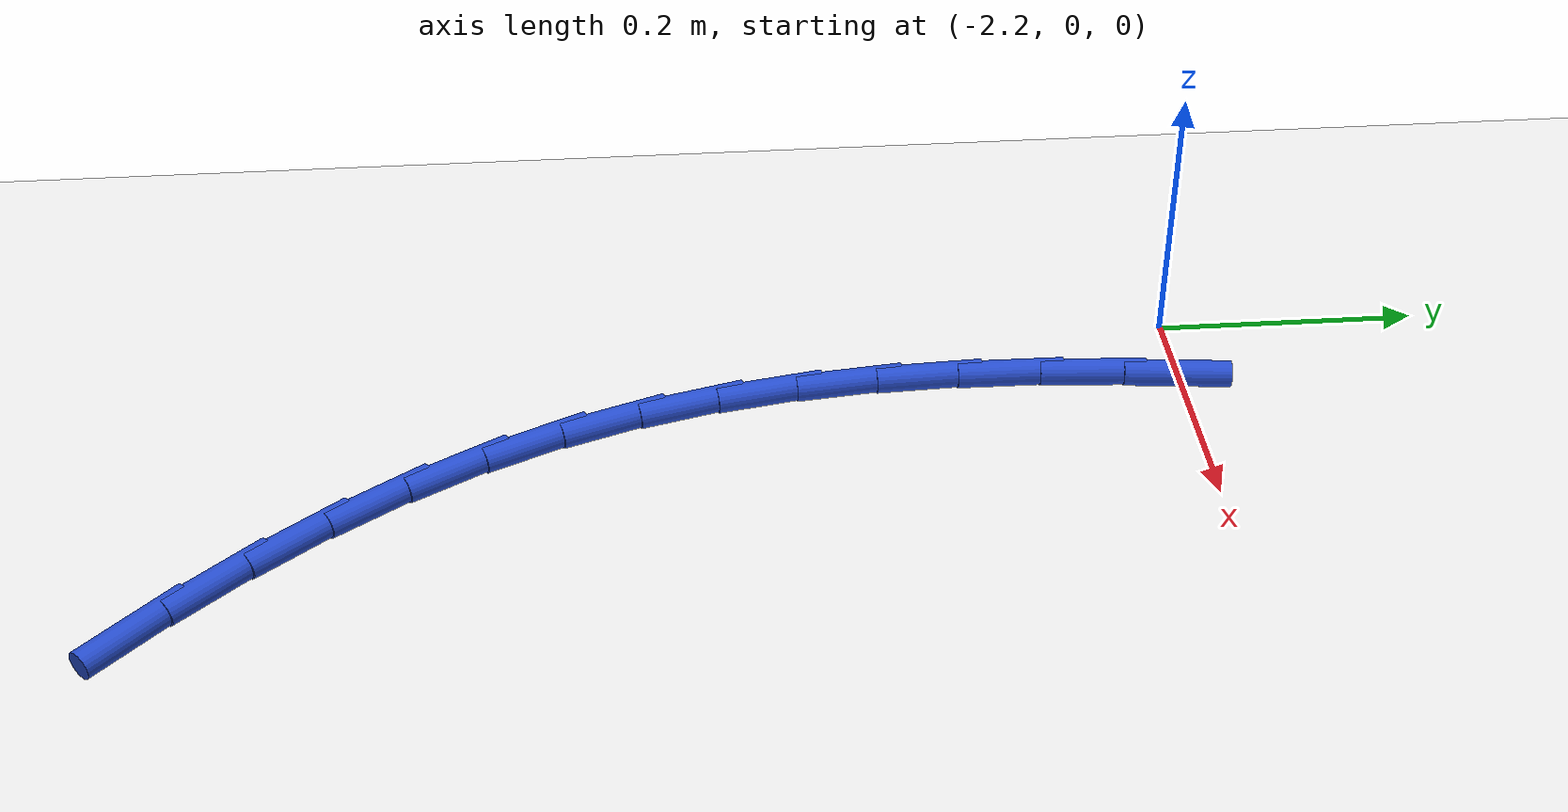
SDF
<sdf version="1.6">
 <world name="default">
  <model name="ground_plane">
   <static>1</static>
   <link name="link">
    <collision name="collision">
     <geometry><plane><normal>0 0 1</normal><size>100 100</size></plane></geometry>
     <surface><friction><ode><mu>100</mu><mu2>50</mu2></ode></friction></surface>
    </collision>
    <visual name="visual">
     <cast_shadows>0</cast_shadows>
     <geometry><plane><normal>0 0 1</normal><size>100 100</size></plane></geometry>
     <material>
      <script><uri>file://media/materials/scripts/gazebo.material</uri><name>Gazebo/WhiteGlow</name></script>
     </material>
    </visual>
   </link>
  </model>
  <model name="line">
   <link name="link_55">
    <pose>-2.1276346523270924 -0.003674985043513688 0.01 0 1.57 1.462831543720445</pose>
    <collision name="collision">
     <geometry><cylinder><radius>0.01</radius><length>0.08</length></cylinder></geometry>
    </collision>
    <visual name="visual">
     <material>
      <script><name>Gazebo/Blue</name><uri>file://media/materials/scripts/gazebo.material</uri></script>
     </material>
     <geometry><cylinder><radius>0.01</radius><length>0.08</length></cylinder></geometry>
    </visual>
   </link>
   <link name="link_56">
    <pose>-2.1344070885161823 -0.06615926430011856 0.01 0 1.57 1.5074334323460066</pose>
    <collision name="collision">
     <geometry><cylinder><radius>0.01</radius><length>0.08</length></cylinder></geometry>
    </collision>
    <visual name="visual">
     <material>
      <script><name>Gazebo/Blue</name><uri>file://media/materials/scripts/gazebo.material</uri></script>
     </material>
     <geometry><cylinder><radius>0.01</radius><length>0.08</length></cylinder></geometry>
    </visual>
   </link>
   <link name="link_57">
    <pose>-2.138337102065695 -0.12810013198562056 0.01 0 1.57 1.5586153283201298</pose>
    <collision name="collision">
     <geometry><cylinder><radius>0.01</radius><length>0.08</length></cylinder></geometry>
    </collision>
    <visual name="visual">
     <material>
      <script><name>Gazebo/Blue</name><uri>file://media/materials/scripts/gazebo.material</uri></script>
     </material>
     <geometry><cylinder><radius>0.01</radius><length>0.08</length></cylinder></geometry>
    </visual>
   </link>
   <link name="link_58">
    <pose>-2.1390828671771054 -0.1893207476734379 0.01 0 1.57 -1.5247389555169115</pose>
    <collision name="collision">
     <geometry><cylinder><radius>0.01</radius><length>0.08</length></cylinder></geometry>
    </collision>
    <visual name="visual">
     <material>
      <script><name>Gazebo/Blue</name><uri>file://media/materials/scripts/gazebo.material</uri></script>
     </material>
     <geometry><cylinder><radius>0.01</radius><length>0.08</length></cylinder></geometry>
    </visual>
   </link>
   <link name="link_59">
    <pose>-2.136302558051893 -0.24964427093699187 0.01 0 1.57 -1.4590568723742288</pose>
    <collision name="collision">
     <geometry><cylinder><radius>0.01</radius><length>0.08</length></cylinder></geometry>
    </collision>
    <visual name="visual">
     <material>
      <script><name>Gazebo/Blue</name><uri>file://media/materials/scripts/gazebo.material</uri></script>
     </material>
     <geometry><cylinder><radius>0.01</radius><length>0.08</length></cylinder></geometry>
    </visual>
   </link>
   <link name="link_60">
    <pose>-2.1296543488915343 -0.30889386134970054 0.01 0 1.57 -1.3857289349434703</pose>
    <collision name="collision">
     <geometry><cylinder><radius>0.01</radius><length>0.08</length></cylinder></geometry>
    </collision>
    <visual name="visual">
     <material>
      <script><name>Gazebo/Blue</name><uri>file://media/materials/scripts/gazebo.material</uri></script>
     </material>
     <geometry><cylinder><radius>0.01</radius><length>0.08</length></cylinder></geometry>
    </visual>
   </link>
   <link name="link_61">
    <pose>-2.118796413897508 -0.36689267848498497 0.01 0 1.57 -1.3048572974450792</pose>
    <collision name="collision">
     <geometry><cylinder><radius>0.01</radius><length>0.08</length></cylinder></geometry>
    </collision>
    <visual name="visual">
     <material>
      <script><name>Gazebo/Blue</name><uri>file://media/materials/scripts/gazebo.material</uri></script>
     </material>
     <geometry><cylinder><radius>0.01</radius><length>0.08</length></cylinder></geometry>
    </visual>
   </link>
   <link name="link_62">
    <pose>-2.103386927271292 -0.42346388191626366 0.01 0 1.57 -1.2169739275934353</pose>
    <collision name="collision">
     <geometry><cylinder><radius>0.01</radius><length>0.08</length></cylinder></geometry>
    </collision>
    <visual name="visual">
     <material>
      <script><name>Gazebo/Blue</name><uri>file://media/materials/scripts/gazebo.material</uri></script>
     </material>
     <geometry><cylinder><radius>0.01</radius><length>0.08</length></cylinder></geometry>
    </visual>
   </link>
   <link name="link_63">
    <pose>-2.0830840632143643 -0.4784306312169575 0.01 0 1.57 -1.1238273943625026</pose>
    <collision name="collision">
     <geometry><cylinder><radius>0.01</radius><length>0.08</length></cylinder></geometry>
    </collision>
    <visual name="visual">
     <material>
      <script><name>Gazebo/Blue</name><uri>file://media/materials/scripts/gazebo.material</uri></script>
     </material>
     <geometry><cylinder><radius>0.01</radius><length>0.08</length></cylinder></geometry>
    </visual>
   </link>
   <link name="link_64">
    <pose>-2.0575893638858656 -0.5316196981783232 0.01 0 1.57 -1.034317810574796</pose>
    <collision name="collision">
     <geometry><cylinder><radius>0.01</radius><length>0.08</length></cylinder></geometry>
    </collision>
    <visual name="visual">
     <material>
      <script><name>Gazebo/Blue</name><uri>file://media/materials/scripts/gazebo.material</uri></script>
     </material>
     <geometry><cylinder><radius>0.01</radius><length>0.08</length></cylinder></geometry>
    </visual>
   </link>
   <link name="link_65">
    <pose>-2.0270960918050545 -0.5828988111215546 0.01 0 1.57 -0.9532481858152021</pose>
    <collision name="collision">
     <geometry><cylinder><radius>0.01</radius><length>0.08</length></cylinder></geometry>
    </collision>
    <visual name="visual">
     <material>
      <script><name>Gazebo/Blue</name><uri>file://media/materials/scripts/gazebo.material</uri></script>
     </material>
     <geometry><cylinder><radius>0.01</radius><length>0.08</length></cylinder></geometry>
    </visual>
   </link>
   <link name="link_66">
    <pose>-1.9921089432375638 -0.6321616384073289 0.01 0 1.57 -0.8799825549191803</pose>
    <collision name="collision">
     <geometry><cylinder><radius>0.01</radius><length>0.08</length></cylinder></geometry>
    </collision>
    <visual name="visual">
     <material>
      <script><name>Gazebo/Blue</name><uri>file://media/materials/scripts/gazebo.material</uri></script>
     </material>
     <geometry><cylinder><radius>0.01</radius><length>0.08</length></cylinder></geometry>
    </visual>
   </link>
   <link name="link_67">
    <pose>-1.953137550321772 -0.6793022595166168 0.01 0 1.57 -0.8136247723117602</pose>
    <collision name="collision">
     <geometry><cylinder><radius>0.01</radius><length>0.08</length></cylinder></geometry>
    </collision>
    <visual name="visual">
     <material>
      <script><name>Gazebo/Blue</name><uri>file://media/materials/scripts/gazebo.material</uri></script>
     </material>
     <geometry><cylinder><radius>0.01</radius><length>0.08</length></cylinder></geometry>
    </visual>
   </link>
   <link name="link_68">
    <pose>-1.9106915451960538 -0.7242147539303918 0.01 0 1.57 -0.7532174791420245</pose>
    <collision name="collision">
     <geometry><cylinder><radius>0.01</radius><length>0.08</length></cylinder></geometry>
    </collision>
    <visual name="visual">
     <material>
      <script><name>Gazebo/Blue</name><uri>file://media/materials/scripts/gazebo.material</uri></script>
     </material>
     <geometry><cylinder><radius>0.01</radius><length>0.08</length></cylinder></geometry>
    </visual>
   </link>
  </model>
 </world>
</sdf>
